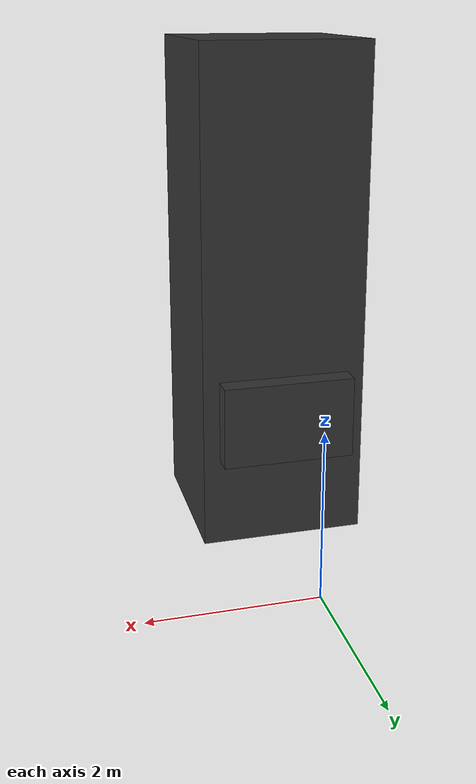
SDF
<?xml version="1.0"?>
<sdf version="1.9">
  <model name="pusher">

    <!-- Joint to fix pusher to the world -->
    <joint name="base_joint" type="fixed">
      <parent>world</parent>
      <child>base</child>
    </joint>

    <!-- Pusher base -->
    <link name="base">
      <pose> 0 -2.5 3 0 0 0 </pose>
      <visual name="base_visual">
        <geometry>
          <box>
            <size> 2 2 6 </size>
          </box>
        </geometry>
        <material>
          <ambient> 0.2 0.2 0.2 1 </ambient>
          <diffuse> 0.2 0.2 0.2 1 </diffuse>
        </material>
      </visual>
    </link>

    <!-- Rod -->
    <link name="rod">
      <pose relative_to="base"> 0 0.25 -1.4 0 0 0 </pose>
      <visual name="rod_visual">
        <geometry>
          <box>
            <size> 1.6 2 1 </size>
          </box>
        </geometry>
        <material>
          <ambient> 0.2 0.2 0.2 1 </ambient>
          <diffuse> 0.2 0.2 0.2 1 </diffuse>
        </material>
      </visual>
      <collision name="rod_collision">
        <geometry>
          <box>
            <size> 1.6 2 1 </size>
          </box>
        </geometry>
      </collision>
    </link>

    <joint name="rod_joint" type="prismatic">
      <parent>base</parent>
      <child>rod</child>
      <axis>
        <xyz>0 1 0</xyz>
      </axis>
    </joint>

    <plugin
      filename="gz-sim-joint-position-controller-system"
      name="gz::sim::systems::JointPositionController">
      <joint_name>rod_joint</joint_name>
      <topic>rod_vel</topic>
    </plugin>

    <plugin
      filename="gz-sim-joint-state-publisher-system"
      name="gz::sim::systems::JointStatePublisher">
      <joint_name>rod_joint</joint_name>
    </plugin>

  </model>
</sdf>
